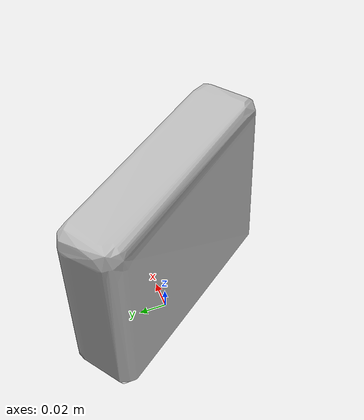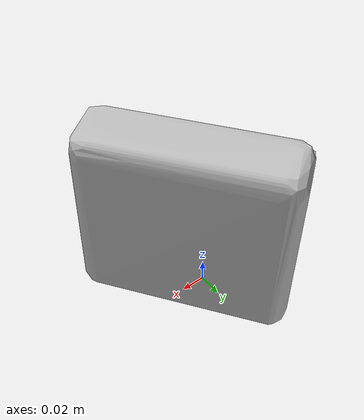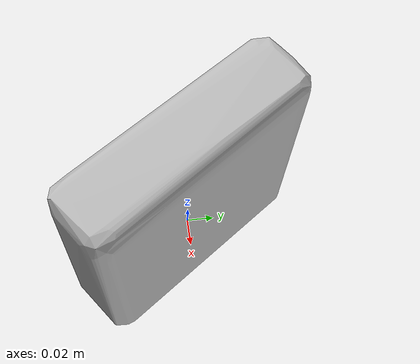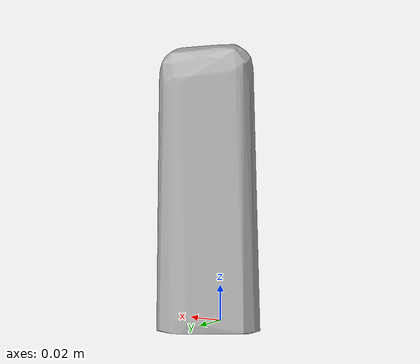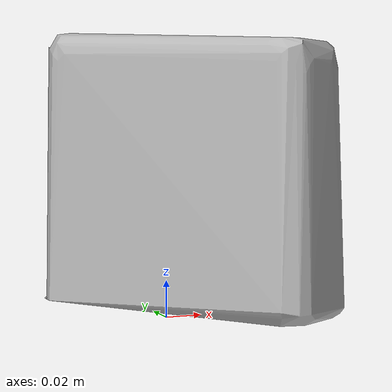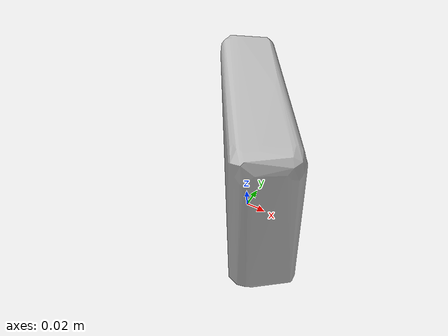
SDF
<?xml version='1.0'?>
<sdf version="1.4">
  <model name="clif_crunch_chocolate_chip">
    <static>false</static>
    <link name="link">
      <inertial>
        <pose>0.011543265941603044 -0.004218607035700513 0.07558857347915429 1.49564353161741 -0.008281442413823678 -2.5325616442817176</pose>
        <mass>0.11995054073537159</mass>
        <inertia>
          <ixx>0.0004654327701359253</ixx>
          <ixy>-6.772184979568593e-21</ixy>
          <ixz>8.589239638570391e-21</ixz>
          <iyy>0.0002873301029857626</iyy>
          <iyz>-2.0032629875592254e-21</iyz>
          <izz>0.00023020657918239464</izz>
        </inertia>
      </inertial>
      <collision name="collision">
        <geometry>
          <mesh>
            <!-- Use a downsampled mesh for collisions -->
            <uri>model:///clif_crunch_chocolate_chip/clif_crunch_chocolate_chip_250_collision.obj</uri>
	        </mesh>
        </geometry>
        <surface>
      </surface>
      </collision>
      <visual name="visual">
        <geometry>
          <mesh>
            <uri>model:///clif_crunch_chocolate_chip/optimized_tsdf_texture_mapped_mesh.obj</uri>
	        </mesh>
        </geometry>
        <material>
          <script>
            <uri>model:///clif_crunch_chocolate_chip/clif_crunch_chocolate_chip.material</uri>
            <name>clif_crunch_chocolate_chip</name>
          </script>
        </material>
      </visual>
    </link>
  </model>
</sdf>
